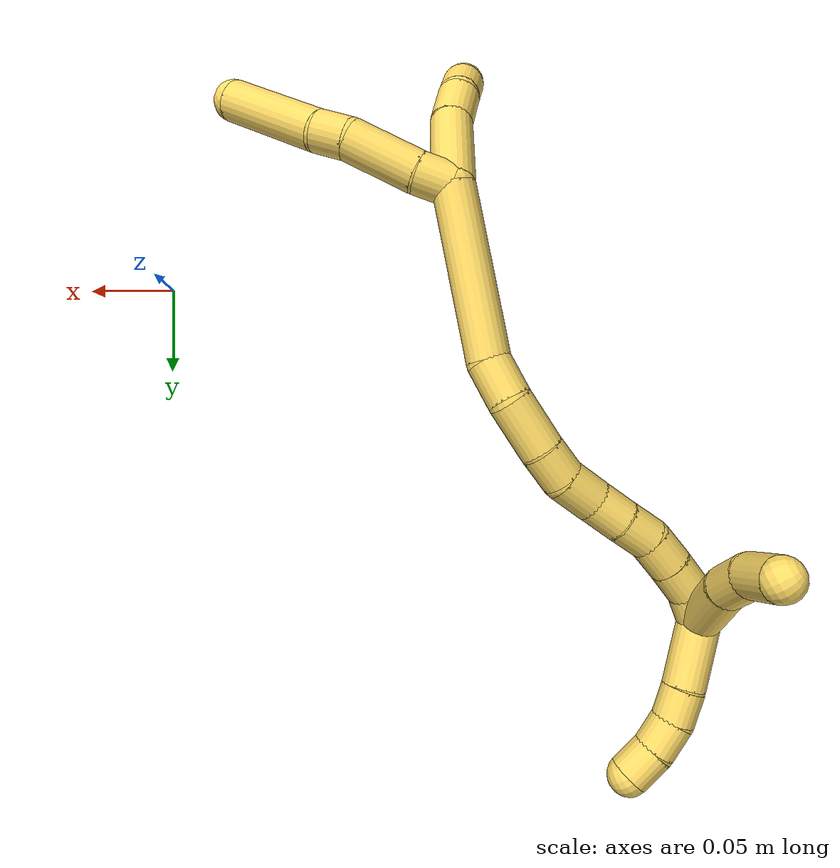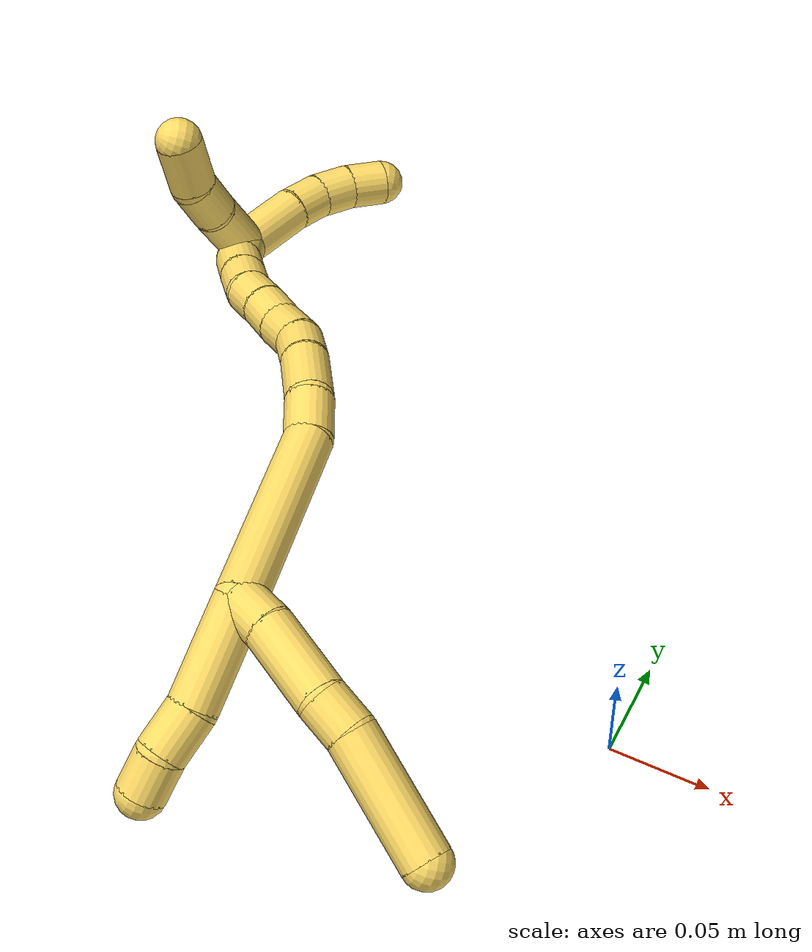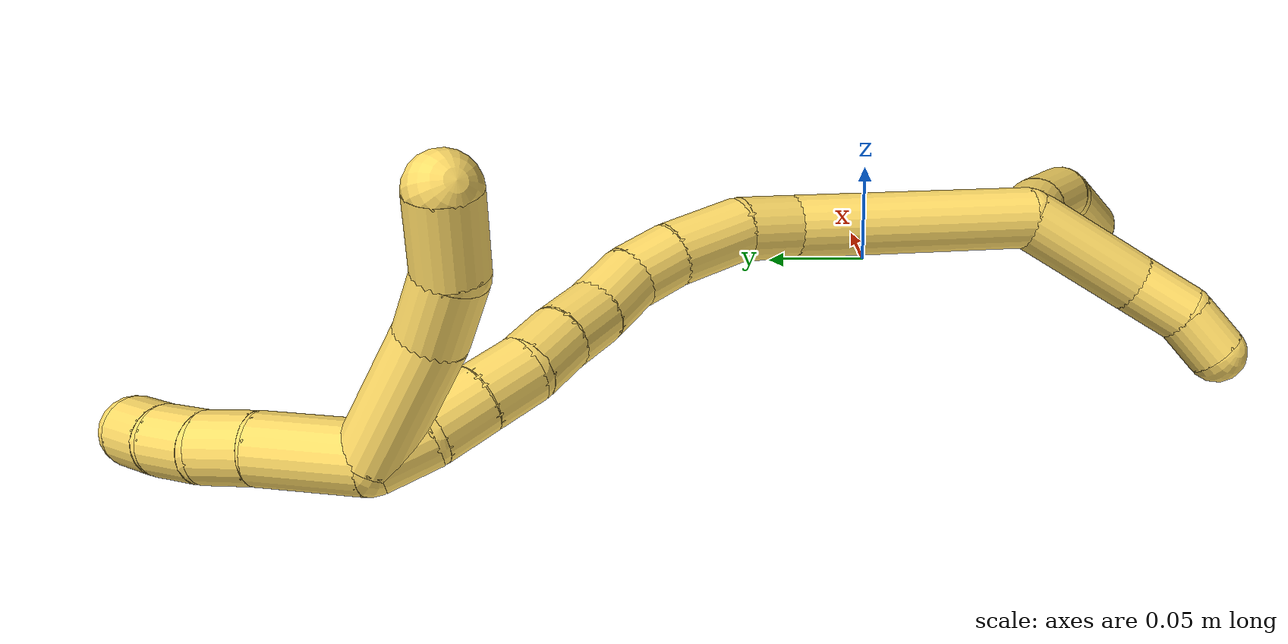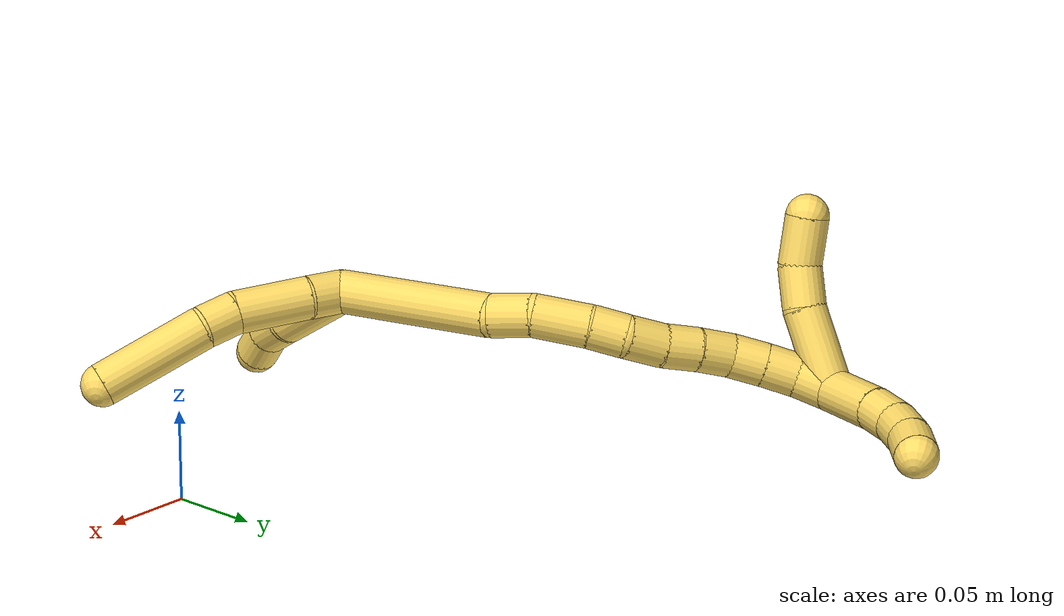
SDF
<sdf version="1.7">
 <world name="default">
  <model name="5">
   <static>0</static>
   <link name="5">
    <collision name="collision-cylinder-e_1_2_8">
     <pose>0.005857 -0.006306 -0.006116 2.34083 0.588038 1.242</pose>
     <geometry><cylinder><radius>0.0125</radius><length>0.021116</length></cylinder></geometry>
     <surface>
      <friction><ode><mu>1.16</mu><mu2>1.16</mu2><slip1>0</slip1><slip2>0</slip2></ode></friction>
      <contact><ode><kp>1e+06</kp><kd>1</kd><max_vel>0</max_vel><min_depth>0.001</min_depth></ode></contact>
     </surface>
    </collision>
    <visual name="visual-cylinder-e_1_2_8">
     <pose>0.005857 -0.006306 -0.006116 2.34083 0.588038 1.242</pose>
     <geometry><cylinder><radius>0.0125</radius><length>0.021116</length></cylinder></geometry>
     <material><ambient>1 0.858824 0.4 1</ambient></material>
    </visual>
    <collision name="collision-cylinder-e_2_8_9">
     <pose>0.022539 -0.027926 -0.023327 2.19784 0.519894 0.960871</pose>
     <geometry><cylinder><radius>0.0125</radius><length>0.04358</length></cylinder></geometry>
     <surface>
      <friction><ode><mu>1.16</mu><mu2>1.16</mu2><slip1>0</slip1><slip2>0</slip2></ode></friction>
      <contact><ode><kp>1e+06</kp><kd>1</kd><max_vel>0</max_vel><min_depth>0.001</min_depth></ode></contact>
     </surface>
    </collision>
    <visual name="visual-cylinder-e_2_8_9">
     <pose>0.022539 -0.027926 -0.023327 2.19784 0.519894 0.960871</pose>
     <geometry><cylinder><radius>0.0125</radius><length>0.04358</length></cylinder></geometry>
     <material><ambient>1 0.858824 0.4 1</ambient></material>
    </visual>
    <collision name="collision-cylinder-e_3_9_10">
     <pose>0.036707 -0.050067 -0.041215 2.3536 0.334195 0.770853</pose>
     <geometry><cylinder><radius>0.0125</radius><length>0.020389</length></cylinder></geometry>
     <surface>
      <friction><ode><mu>1.16</mu><mu2>1.16</mu2><slip1>0</slip1><slip2>0</slip2></ode></friction>
      <contact><ode><kp>1e+06</kp><kd>1</kd><max_vel>0</max_vel><min_depth>0.001</min_depth></ode></contact>
     </surface>
    </collision>
    <visual name="visual-cylinder-e_3_9_10">
     <pose>0.036707 -0.050067 -0.041215 2.3536 0.334195 0.770853</pose>
     <geometry><cylinder><radius>0.0125</radius><length>0.020389</length></cylinder></geometry>
     <material><ambient>1 0.858824 0.4 1</ambient></material>
    </visual>
    <collision name="collision-cylinder-e_4_10_6">
     <pose>0.045919 -0.082245 -0.067408 2.22403 0.181794 0.364968</pose>
     <geometry><cylinder><radius>0.0125</radius><length>0.064915</length></cylinder></geometry>
     <surface>
      <friction><ode><mu>1.16</mu><mu2>1.16</mu2><slip1>0</slip1><slip2>0</slip2></ode></friction>
      <contact><ode><kp>1e+06</kp><kd>1</kd><max_vel>0</max_vel><min_depth>0.001</min_depth></ode></contact>
     </surface>
    </collision>
    <visual name="visual-cylinder-e_4_10_6">
     <pose>0.045919 -0.082245 -0.067408 2.22403 0.181794 0.364968</pose>
     <geometry><cylinder><radius>0.0125</radius><length>0.064915</length></cylinder></geometry>
     <material><ambient>1 0.858824 0.4 1</ambient></material>
    </visual>
    <collision name="collision-cylinder-e_1_2_11">
     <pose>-0.006992 -0.02552 0.004819 1.38416 -0.262977 -0.218357</pose>
     <geometry><cylinder><radius>0.0125</radius><length>0.053791</length></cylinder></geometry>
     <surface>
      <friction><ode><mu>1.16</mu><mu2>1.16</mu2><slip1>0</slip1><slip2>0</slip2></ode></friction>
      <contact><ode><kp>1e+06</kp><kd>1</kd><max_vel>0</max_vel><min_depth>0.001</min_depth></ode></contact>
     </surface>
    </collision>
    <visual name="visual-cylinder-e_1_2_11">
     <pose>-0.006992 -0.02552 0.004819 1.38416 -0.262977 -0.218357</pose>
     <geometry><cylinder><radius>0.0125</radius><length>0.053791</length></cylinder></geometry>
     <material><ambient>1 0.858824 0.4 1</ambient></material>
    </visual>
    <collision name="collision-cylinder-e_2_11_12">
     <pose>-0.018257 -0.061856 0.013957 1.19091 -0.351695 -0.239602</pose>
     <geometry><cylinder><radius>0.0125</radius><length>0.024813</length></cylinder></geometry>
     <surface>
      <friction><ode><mu>1.16</mu><mu2>1.16</mu2><slip1>0</slip1><slip2>0</slip2></ode></friction>
      <contact><ode><kp>1e+06</kp><kd>1</kd><max_vel>0</max_vel><min_depth>0.001</min_depth></ode></contact>
     </surface>
    </collision>
    <visual name="visual-cylinder-e_2_11_12">
     <pose>-0.018257 -0.061856 0.013957 1.19091 -0.351695 -0.239602</pose>
     <geometry><cylinder><radius>0.0125</radius><length>0.024813</length></cylinder></geometry>
     <material><ambient>1 0.858824 0.4 1</ambient></material>
    </visual>
    <collision name="collision-cylinder-e_3_12_5">
     <pose>-0.028542 -0.081418 0.019631 1.41703 -0.596675 -0.515336</pose>
     <geometry><cylinder><radius>0.0125</radius><length>0.021397</length></cylinder></geometry>
     <surface>
      <friction><ode><mu>1.16</mu><mu2>1.16</mu2><slip1>0</slip1><slip2>0</slip2></ode></friction>
      <contact><ode><kp>1e+06</kp><kd>1</kd><max_vel>0</max_vel><min_depth>0.001</min_depth></ode></contact>
     </surface>
    </collision>
    <visual name="visual-cylinder-e_3_12_5">
     <pose>-0.028542 -0.081418 0.019631 1.41703 -0.596675 -0.515336</pose>
     <geometry><cylinder><radius>0.0125</radius><length>0.021397</length></cylinder></geometry>
     <material><ambient>1 0.858824 0.4 1</ambient></material>
    </visual>
    <collision name="collision-cylinder-e_1_2_13">
     <pose>-0.014158 0.045611 -0.014997 -1.88845 -0.28675 0.393704</pose>
     <geometry><cylinder><radius>0.0125</radius><length>0.100115</length></cylinder></geometry>
     <surface>
      <friction><ode><mu>1.16</mu><mu2>1.16</mu2><slip1>0</slip1><slip2>0</slip2></ode></friction>
      <contact><ode><kp>1e+06</kp><kd>1</kd><max_vel>0</max_vel><min_depth>0.001</min_depth></ode></contact>
     </surface>
    </collision>
    <visual name="visual-cylinder-e_1_2_13">
     <pose>-0.014158 0.045611 -0.014997 -1.88845 -0.28675 0.393704</pose>
     <geometry><cylinder><radius>0.0125</radius><length>0.100115</length></cylinder></geometry>
     <material><ambient>1 0.858824 0.4 1</ambient></material>
    </visual>
    <collision name="collision-cylinder-e_2_13_14">
     <pose>-0.032646 0.102587 -0.030181 -1.5873 -0.363986 0.369908</pose>
     <geometry><cylinder><radius>0.0125</radius><length>0.024325</length></cylinder></geometry>
     <surface>
      <friction><ode><mu>1.16</mu><mu2>1.16</mu2><slip1>0</slip1><slip2>0</slip2></ode></friction>
      <contact><ode><kp>1e+06</kp><kd>1</kd><max_vel>0</max_vel><min_depth>0.001</min_depth></ode></contact>
     </surface>
    </collision>
    <visual name="visual-cylinder-e_2_13_14">
     <pose>-0.032646 0.102587 -0.030181 -1.5873 -0.363986 0.369908</pose>
     <geometry><cylinder><radius>0.0125</radius><length>0.024325</length></cylinder></geometry>
     <material><ambient>1 0.858824 0.4 1</ambient></material>
    </visual>
    <collision name="collision-cylinder-e_3_14_15">
     <pose>-0.046539 0.126922 -0.030629 -1.59091 -0.635228 0.647258</pose>
     <geometry><cylinder><radius>0.0125</radius><length>0.032235</length></cylinder></geometry>
     <surface>
      <friction><ode><mu>1.16</mu><mu2>1.16</mu2><slip1>0</slip1><slip2>0</slip2></ode></friction>
      <contact><ode><kp>1e+06</kp><kd>1</kd><max_vel>0</max_vel><min_depth>0.001</min_depth></ode></contact>
     </surface>
    </collision>
    <visual name="visual-cylinder-e_3_14_15">
     <pose>-0.046539 0.126922 -0.030629 -1.59091 -0.635228 0.647258</pose>
     <geometry><cylinder><radius>0.0125</radius><length>0.032235</length></cylinder></geometry>
     <material><ambient>1 0.858824 0.4 1</ambient></material>
    </visual>
    <collision name="collision-cylinder-e_4_15_16">
     <pose>-0.063095 0.147244 -0.030825 -1.56193 -0.760346 0.754257</pose>
     <geometry><cylinder><radius>0.0125</radius><length>0.020292</length></cylinder></geometry>
     <surface>
      <friction><ode><mu>1.16</mu><mu2>1.16</mu2><slip1>0</slip1><slip2>0</slip2></ode></friction>
      <contact><ode><kp>1e+06</kp><kd>1</kd><max_vel>0</max_vel><min_depth>0.001</min_depth></ode></contact>
     </surface>
    </collision>
    <visual name="visual-cylinder-e_4_15_16">
     <pose>-0.063095 0.147244 -0.030825 -1.56193 -0.760346 0.754257</pose>
     <geometry><cylinder><radius>0.0125</radius><length>0.020292</length></cylinder></geometry>
     <material><ambient>1 0.858824 0.4 1</ambient></material>
    </visual>
    <collision name="collision-cylinder-e_5_16_17">
     <pose>-0.079018 0.160856 -0.028117 -1.17141 -0.92034 0.635325</pose>
     <geometry><cylinder><radius>0.0125</radius><length>0.022443</length></cylinder></geometry>
     <surface>
      <friction><ode><mu>1.16</mu><mu2>1.16</mu2><slip1>0</slip1><slip2>0</slip2></ode></friction>
      <contact><ode><kp>1e+06</kp><kd>1</kd><max_vel>0</max_vel><min_depth>0.001</min_depth></ode></contact>
     </surface>
    </collision>
    <visual name="visual-cylinder-e_5_16_17">
     <pose>-0.079018 0.160856 -0.028117 -1.17141 -0.92034 0.635325</pose>
     <geometry><cylinder><radius>0.0125</radius><length>0.022443</length></cylinder></geometry>
     <material><ambient>1 0.858824 0.4 1</ambient></material>
    </visual>
    <collision name="collision-cylinder-e_6_17_18">
     <pose>-0.095212 0.173663 -0.022385 -1.12979 -0.787094 0.514642</pose>
     <geometry><cylinder><radius>0.0125</radius><length>0.020511</length></cylinder></geometry>
     <surface>
      <friction><ode><mu>1.16</mu><mu2>1.16</mu2><slip1>0</slip1><slip2>0</slip2></ode></friction>
      <contact><ode><kp>1e+06</kp><kd>1</kd><max_vel>0</max_vel><min_depth>0.001</min_depth></ode></contact>
     </surface>
    </collision>
    <visual name="visual-cylinder-e_6_17_18">
     <pose>-0.095212 0.173663 -0.022385 -1.12979 -0.787094 0.514642</pose>
     <geometry><cylinder><radius>0.0125</radius><length>0.020511</length></cylinder></geometry>
     <material><ambient>1 0.858824 0.4 1</ambient></material>
    </visual>
    <collision name="collision-cylinder-e_7_18_19">
     <pose>-0.110089 0.186051 -0.01641 -1.11213 -0.863018 0.557425</pose>
     <geometry><cylinder><radius>0.0125</radius><length>0.020041</length></cylinder></geometry>
     <surface>
      <friction><ode><mu>1.16</mu><mu2>1.16</mu2><slip1>0</slip1><slip2>0</slip2></ode></friction>
      <contact><ode><kp>1e+06</kp><kd>1</kd><max_vel>0</max_vel><min_depth>0.001</min_depth></ode></contact>
     </surface>
    </collision>
    <visual name="visual-cylinder-e_7_18_19">
     <pose>-0.110089 0.186051 -0.01641 -1.11213 -0.863018 0.557425</pose>
     <geometry><cylinder><radius>0.0125</radius><length>0.020041</length></cylinder></geometry>
     <material><ambient>1 0.858824 0.4 1</ambient></material>
    </visual>
    <collision name="collision-cylinder-e_8_19_20">
     <pose>-0.124861 0.198869 -0.013074 -1.50612 -0.797228 0.75197</pose>
     <geometry><cylinder><radius>0.0125</radius><length>0.020011</length></cylinder></geometry>
     <surface>
      <friction><ode><mu>1.16</mu><mu2>1.16</mu2><slip1>0</slip1><slip2>0</slip2></ode></friction>
      <contact><ode><kp>1e+06</kp><kd>1</kd><max_vel>0</max_vel><min_depth>0.001</min_depth></ode></contact>
     </surface>
    </collision>
    <visual name="visual-cylinder-e_8_19_20">
     <pose>-0.124861 0.198869 -0.013074 -1.50612 -0.797228 0.75197</pose>
     <geometry><cylinder><radius>0.0125</radius><length>0.020011</length></cylinder></geometry>
     <material><ambient>1 0.858824 0.4 1</ambient></material>
    </visual>
    <collision name="collision-cylinder-e_9_20_21">
     <pose>-0.139253 0.212752 -0.012618 -1.57022 -0.808521 0.808106</pose>
     <geometry><cylinder><radius>0.0125</radius><length>0.020002</length></cylinder></geometry>
     <surface>
      <friction><ode><mu>1.16</mu><mu2>1.16</mu2><slip1>0</slip1><slip2>0</slip2></ode></friction>
      <contact><ode><kp>1e+06</kp><kd>1</kd><max_vel>0</max_vel><min_depth>0.001</min_depth></ode></contact>
     </surface>
    </collision>
    <visual name="visual-cylinder-e_9_20_21">
     <pose>-0.139253 0.212752 -0.012618 -1.57022 -0.808521 0.808106</pose>
     <geometry><cylinder><radius>0.0125</radius><length>0.020002</length></cylinder></geometry>
     <material><ambient>1 0.858824 0.4 1</ambient></material>
    </visual>
    <collision name="collision-cylinder-e_10_21_1">
     <pose>-0.152741 0.227112 -0.014975 -1.87751 -0.674661 0.893389</pose>
     <geometry><cylinder><radius>0.0125</radius><length>0.020025</length></cylinder></geometry>
     <surface>
      <friction><ode><mu>1.16</mu><mu2>1.16</mu2><slip1>0</slip1><slip2>0</slip2></ode></friction>
      <contact><ode><kp>1e+06</kp><kd>1</kd><max_vel>0</max_vel><min_depth>0.001</min_depth></ode></contact>
     </surface>
    </collision>
    <visual name="visual-cylinder-e_10_21_1">
     <pose>-0.152741 0.227112 -0.014975 -1.87751 -0.674661 0.893389</pose>
     <geometry><cylinder><radius>0.0125</radius><length>0.020025</length></cylinder></geometry>
     <material><ambient>1 0.858824 0.4 1</ambient></material>
    </visual>
    <collision name="collision-cylinder-e_1_1_22">
     <pose>-0.160335 0.249624 -0.030089 -2.27352 -0.06781 0.146092</pose>
     <geometry><cylinder><radius>0.0125</radius><length>0.039558</length></cylinder></geometry>
     <surface>
      <friction><ode><mu>1.16</mu><mu2>1.16</mu2><slip1>0</slip1><slip2>0</slip2></ode></friction>
      <contact><ode><kp>1e+06</kp><kd>1</kd><max_vel>0</max_vel><min_depth>0.001</min_depth></ode></contact>
     </surface>
    </collision>
    <visual name="visual-cylinder-e_1_1_22">
     <pose>-0.160335 0.249624 -0.030089 -2.27352 -0.06781 0.146092</pose>
     <geometry><cylinder><radius>0.0125</radius><length>0.039558</length></cylinder></geometry>
     <material><ambient>1 0.858824 0.4 1</ambient></material>
    </visual>
    <collision name="collision-cylinder-e_2_22_23">
     <pose>-0.162728 0.271536 -0.050067 -2.38252 -0.105329 0.262786</pose>
     <geometry><cylinder><radius>0.0125</radius><length>0.020027</length></cylinder></geometry>
     <surface>
      <friction><ode><mu>1.16</mu><mu2>1.16</mu2><slip1>0</slip1><slip2>0</slip2></ode></friction>
      <contact><ode><kp>1e+06</kp><kd>1</kd><max_vel>0</max_vel><min_depth>0.001</min_depth></ode></contact>
     </surface>
    </collision>
    <visual name="visual-cylinder-e_2_22_23">
     <pose>-0.162728 0.271536 -0.050067 -2.38252 -0.105329 0.262786</pose>
     <geometry><cylinder><radius>0.0125</radius><length>0.020027</length></cylinder></geometry>
     <material><ambient>1 0.858824 0.4 1</ambient></material>
    </visual>
    <collision name="collision-cylinder-e_3_23_24">
     <pose>-0.16331 0.283732 -0.065772 -2.57946 0.046879 -0.162049</pose>
     <geometry><cylinder><radius>0.0125</radius><length>0.020067</length></cylinder></geometry>
     <surface>
      <friction><ode><mu>1.16</mu><mu2>1.16</mu2><slip1>0</slip1><slip2>0</slip2></ode></friction>
      <contact><ode><kp>1e+06</kp><kd>1</kd><max_vel>0</max_vel><min_depth>0.001</min_depth></ode></contact>
     </surface>
    </collision>
    <visual name="visual-cylinder-e_3_23_24">
     <pose>-0.16331 0.283732 -0.065772 -2.57946 0.046879 -0.162049</pose>
     <geometry><cylinder><radius>0.0125</radius><length>0.020067</length></cylinder></geometry>
     <material><ambient>1 0.858824 0.4 1</ambient></material>
    </visual>
    <collision name="collision-cylinder-e_4_24_4">
     <pose>-0.161518 0.292843 -0.083609 -2.7586 0.130288 -0.649182</pose>
     <geometry><cylinder><radius>0.0125</radius><length>0.020348</length></cylinder></geometry>
     <surface>
      <friction><ode><mu>1.16</mu><mu2>1.16</mu2><slip1>0</slip1><slip2>0</slip2></ode></friction>
      <contact><ode><kp>1e+06</kp><kd>1</kd><max_vel>0</max_vel><min_depth>0.001</min_depth></ode></contact>
     </surface>
    </collision>
    <visual name="visual-cylinder-e_4_24_4">
     <pose>-0.161518 0.292843 -0.083609 -2.7586 0.130288 -0.649182</pose>
     <geometry><cylinder><radius>0.0125</radius><length>0.020348</length></cylinder></geometry>
     <material><ambient>1 0.858824 0.4 1</ambient></material>
    </visual>
    <collision name="collision-cylinder-e_1_1_25">
     <pose>-0.140695 0.234027 -0.002367 0.036031 0.884893 0.017072</pose>
     <geometry><cylinder><radius>0.0125</radius><length>0.047297</length></cylinder></geometry>
     <surface>
      <friction><ode><mu>1.16</mu><mu2>1.16</mu2><slip1>0</slip1><slip2>0</slip2></ode></friction>
      <contact><ode><kp>1e+06</kp><kd>1</kd><max_vel>0</max_vel><min_depth>0.001</min_depth></ode></contact>
     </surface>
    </collision>
    <visual name="visual-cylinder-e_1_1_25">
     <pose>-0.140695 0.234027 -0.002367 0.036031 0.884893 0.017072</pose>
     <geometry><cylinder><radius>0.0125</radius><length>0.047297</length></cylinder></geometry>
     <material><ambient>1 0.858824 0.4 1</ambient></material>
    </visual>
    <collision name="collision-cylinder-e_2_25_26">
     <pose>-0.113991 0.235282 0.021328 -0.202844 0.756165 -0.080801</pose>
     <geometry><cylinder><radius>0.0125</radius><length>0.024495</length></cylinder></geometry>
     <surface>
      <friction><ode><mu>1.16</mu><mu2>1.16</mu2><slip1>0</slip1><slip2>0</slip2></ode></friction>
      <contact><ode><kp>1e+06</kp><kd>1</kd><max_vel>0</max_vel><min_depth>0.001</min_depth></ode></contact>
     </surface>
    </collision>
    <visual name="visual-cylinder-e_2_25_26">
     <pose>-0.113991 0.235282 0.021328 -0.202844 0.756165 -0.080801</pose>
     <geometry><cylinder><radius>0.0125</radius><length>0.024495</length></cylinder></geometry>
     <material><ambient>1 0.858824 0.4 1</ambient></material>
    </visual>
    <collision name="collision-cylinder-e_3_26_3">
     <pose>-0.096017 0.243581 0.03812 -0.678719 0.74577 -0.274454</pose>
     <geometry><cylinder><radius>0.0125</radius><length>0.028208</length></cylinder></geometry>
     <surface>
      <friction><ode><mu>1.16</mu><mu2>1.16</mu2><slip1>0</slip1><slip2>0</slip2></ode></friction>
      <contact><ode><kp>1e+06</kp><kd>1</kd><max_vel>0</max_vel><min_depth>0.001</min_depth></ode></contact>
     </surface>
    </collision>
    <visual name="visual-cylinder-e_3_26_3">
     <pose>-0.096017 0.243581 0.03812 -0.678719 0.74577 -0.274454</pose>
     <geometry><cylinder><radius>0.0125</radius><length>0.028208</length></cylinder></geometry>
     <material><ambient>1 0.858824 0.4 1</ambient></material>
    </visual>
    <collision name="collision-sphere-3">
     <pose>-0.086447 0.250086 0.046184 0 -0 0</pose>
     <geometry><sphere><radius>0.0125</radius></sphere></geometry>
     <surface>
      <friction><ode><mu>1.16</mu><mu2>1.16</mu2><slip1>0</slip1><slip2>0</slip2></ode></friction>
      <contact><ode><kp>1e+06</kp><kd>1</kd><max_vel>0</max_vel><min_depth>0.001</min_depth></ode></contact>
     </surface>
    </collision>
    <visual name="visual-sphere-3">
     <pose>-0.086447 0.250086 0.046184 0 -0 0</pose>
     <geometry><sphere><radius>0.0125</radius></sphere></geometry>
     <material><ambient>1 0.858824 0.4 1</ambient></material>
    </visual>
    <collision name="collision-sphere-26">
     <pose>-0.105587 0.237077 0.030055 0 -0 0</pose>
     <geometry><sphere><radius>0.0125</radius></sphere></geometry>
     <surface>
      <friction><ode><mu>1.16</mu><mu2>1.16</mu2><slip1>0</slip1><slip2>0</slip2></ode></friction>
      <contact><ode><kp>1e+06</kp><kd>1</kd><max_vel>0</max_vel><min_depth>0.001</min_depth></ode></contact>
     </surface>
    </collision>
    <visual name="visual-sphere-26">
     <pose>-0.105587 0.237077 0.030055 0 -0 0</pose>
     <geometry><sphere><radius>0.0125</radius></sphere></geometry>
     <material><ambient>1 0.858824 0.4 1</ambient></material>
    </visual>
    <collision name="collision-sphere-25">
     <pose>-0.122394 0.233487 0.012601 0 -0 0</pose>
     <geometry><sphere><radius>0.0125</radius></sphere></geometry>
     <surface>
      <friction><ode><mu>1.16</mu><mu2>1.16</mu2><slip1>0</slip1><slip2>0</slip2></ode></friction>
      <contact><ode><kp>1e+06</kp><kd>1</kd><max_vel>0</max_vel><min_depth>0.001</min_depth></ode></contact>
     </surface>
    </collision>
    <visual name="visual-sphere-25">
     <pose>-0.122394 0.233487 0.012601 0 -0 0</pose>
     <geometry><sphere><radius>0.0125</radius></sphere></geometry>
     <material><ambient>1 0.858824 0.4 1</ambient></material>
    </visual>
    <collision name="collision-sphere-4">
     <pose>-0.160197 0.296613 -0.092966 0 -0 0</pose>
     <geometry><sphere><radius>0.0125</radius></sphere></geometry>
     <surface>
      <friction><ode><mu>1.16</mu><mu2>1.16</mu2><slip1>0</slip1><slip2>0</slip2></ode></friction>
      <contact><ode><kp>1e+06</kp><kd>1</kd><max_vel>0</max_vel><min_depth>0.001</min_depth></ode></contact>
     </surface>
    </collision>
    <visual name="visual-sphere-4">
     <pose>-0.160197 0.296613 -0.092966 0 -0 0</pose>
     <geometry><sphere><radius>0.0125</radius></sphere></geometry>
     <material><ambient>1 0.858824 0.4 1</ambient></material>
    </visual>
    <collision name="collision-sphere-24">
     <pose>-0.16284 0.289074 -0.074252 0 -0 0</pose>
     <geometry><sphere><radius>0.0125</radius></sphere></geometry>
     <surface>
      <friction><ode><mu>1.16</mu><mu2>1.16</mu2><slip1>0</slip1><slip2>0</slip2></ode></friction>
      <contact><ode><kp>1e+06</kp><kd>1</kd><max_vel>0</max_vel><min_depth>0.001</min_depth></ode></contact>
     </surface>
    </collision>
    <visual name="visual-sphere-24">
     <pose>-0.16284 0.289074 -0.074252 0 -0 0</pose>
     <geometry><sphere><radius>0.0125</radius></sphere></geometry>
     <material><ambient>1 0.858824 0.4 1</ambient></material>
    </visual>
    <collision name="collision-sphere-23">
     <pose>-0.163781 0.27839 -0.057292 0 -0 0</pose>
     <geometry><sphere><radius>0.0125</radius></sphere></geometry>
     <surface>
      <friction><ode><mu>1.16</mu><mu2>1.16</mu2><slip1>0</slip1><slip2>0</slip2></ode></friction>
      <contact><ode><kp>1e+06</kp><kd>1</kd><max_vel>0</max_vel><min_depth>0.001</min_depth></ode></contact>
     </surface>
    </collision>
    <visual name="visual-sphere-23">
     <pose>-0.163781 0.27839 -0.057292 0 -0 0</pose>
     <geometry><sphere><radius>0.0125</radius></sphere></geometry>
     <material><ambient>1 0.858824 0.4 1</ambient></material>
    </visual>
    <collision name="collision-sphere-22">
     <pose>-0.161675 0.264683 -0.042843 0 -0 0</pose>
     <geometry><sphere><radius>0.0125</radius></sphere></geometry>
     <surface>
      <friction><ode><mu>1.16</mu><mu2>1.16</mu2><slip1>0</slip1><slip2>0</slip2></ode></friction>
      <contact><ode><kp>1e+06</kp><kd>1</kd><max_vel>0</max_vel><min_depth>0.001</min_depth></ode></contact>
     </surface>
    </collision>
    <visual name="visual-sphere-22">
     <pose>-0.161675 0.264683 -0.042843 0 -0 0</pose>
     <geometry><sphere><radius>0.0125</radius></sphere></geometry>
     <material><ambient>1 0.858824 0.4 1</ambient></material>
    </visual>
    <collision name="collision-sphere-1">
     <pose>-0.158995 0.234566 -0.017336 0 -0 0</pose>
     <geometry><sphere><radius>0.0125</radius></sphere></geometry>
     <surface>
      <friction><ode><mu>1.16</mu><mu2>1.16</mu2><slip1>0</slip1><slip2>0</slip2></ode></friction>
      <contact><ode><kp>1e+06</kp><kd>1</kd><max_vel>0</max_vel><min_depth>0.001</min_depth></ode></contact>
     </surface>
    </collision>
    <visual name="visual-sphere-1">
     <pose>-0.158995 0.234566 -0.017336 0 -0 0</pose>
     <geometry><sphere><radius>0.0125</radius></sphere></geometry>
     <material><ambient>1 0.858824 0.4 1</ambient></material>
    </visual>
    <collision name="collision-sphere-21">
     <pose>-0.146487 0.219658 -0.012614 0 -0 0</pose>
     <geometry><sphere><radius>0.0125</radius></sphere></geometry>
     <surface>
      <friction><ode><mu>1.16</mu><mu2>1.16</mu2><slip1>0</slip1><slip2>0</slip2></ode></friction>
      <contact><ode><kp>1e+06</kp><kd>1</kd><max_vel>0</max_vel><min_depth>0.001</min_depth></ode></contact>
     </surface>
    </collision>
    <visual name="visual-sphere-21">
     <pose>-0.146487 0.219658 -0.012614 0 -0 0</pose>
     <geometry><sphere><radius>0.0125</radius></sphere></geometry>
     <material><ambient>1 0.858824 0.4 1</ambient></material>
    </visual>
    <collision name="collision-sphere-11">
     <pose>-0.013983 -0.051039 0.009638 0 -0 0</pose>
     <geometry><sphere><radius>0.0125</radius></sphere></geometry>
     <surface>
      <friction><ode><mu>1.16</mu><mu2>1.16</mu2><slip1>0</slip1><slip2>0</slip2></ode></friction>
      <contact><ode><kp>1e+06</kp><kd>1</kd><max_vel>0</max_vel><min_depth>0.001</min_depth></ode></contact>
     </surface>
    </collision>
    <visual name="visual-sphere-11">
     <pose>-0.013983 -0.051039 0.009638 0 -0 0</pose>
     <geometry><sphere><radius>0.0125</radius></sphere></geometry>
     <material><ambient>1 0.858824 0.4 1</ambient></material>
    </visual>
    <collision name="collision-sphere-6">
     <pose>0.051788 -0.107595 -0.08681 0 -0 0</pose>
     <geometry><sphere><radius>0.0125</radius></sphere></geometry>
     <surface>
      <friction><ode><mu>1.16</mu><mu2>1.16</mu2><slip1>0</slip1><slip2>0</slip2></ode></friction>
      <contact><ode><kp>1e+06</kp><kd>1</kd><max_vel>0</max_vel><min_depth>0.001</min_depth></ode></contact>
     </surface>
    </collision>
    <visual name="visual-sphere-6">
     <pose>0.051788 -0.107595 -0.08681 0 -0 0</pose>
     <geometry><sphere><radius>0.0125</radius></sphere></geometry>
     <material><ambient>1 0.858824 0.4 1</ambient></material>
    </visual>
    <collision name="collision-sphere-10">
     <pose>0.040051 -0.056894 -0.048007 0 -0 0</pose>
     <geometry><sphere><radius>0.0125</radius></sphere></geometry>
     <surface>
      <friction><ode><mu>1.16</mu><mu2>1.16</mu2><slip1>0</slip1><slip2>0</slip2></ode></friction>
      <contact><ode><kp>1e+06</kp><kd>1</kd><max_vel>0</max_vel><min_depth>0.001</min_depth></ode></contact>
     </surface>
    </collision>
    <visual name="visual-sphere-10">
     <pose>0.040051 -0.056894 -0.048007 0 -0 0</pose>
     <geometry><sphere><radius>0.0125</radius></sphere></geometry>
     <material><ambient>1 0.858824 0.4 1</ambient></material>
    </visual>
    <collision name="collision-sphere-9">
     <pose>0.033364 -0.043239 -0.034423 0 -0 0</pose>
     <geometry><sphere><radius>0.0125</radius></sphere></geometry>
     <surface>
      <friction><ode><mu>1.16</mu><mu2>1.16</mu2><slip1>0</slip1><slip2>0</slip2></ode></friction>
      <contact><ode><kp>1e+06</kp><kd>1</kd><max_vel>0</max_vel><min_depth>0.001</min_depth></ode></contact>
     </surface>
    </collision>
    <visual name="visual-sphere-9">
     <pose>0.033364 -0.043239 -0.034423 0 -0 0</pose>
     <geometry><sphere><radius>0.0125</radius></sphere></geometry>
     <material><ambient>1 0.858824 0.4 1</ambient></material>
    </visual>
    <collision name="collision-sphere-2">
     <geometry><sphere><radius>0.0125</radius></sphere></geometry>
     <surface>
      <friction><ode><mu>1.16</mu><mu2>1.16</mu2><slip1>0</slip1><slip2>0</slip2></ode></friction>
      <contact><ode><kp>1e+06</kp><kd>1</kd><max_vel>0</max_vel><min_depth>0.001</min_depth></ode></contact>
     </surface>
    </collision>
    <visual name="visual-sphere-2">
     <geometry><sphere><radius>0.0125</radius></sphere></geometry>
     <material><ambient>1 0.858824 0.4 1</ambient></material>
    </visual>
    <collision name="collision-sphere-19">
     <pose>-0.117703 0.191893 -0.013526 0 -0 0</pose>
     <geometry><sphere><radius>0.0125</radius></sphere></geometry>
     <surface>
      <friction><ode><mu>1.16</mu><mu2>1.16</mu2><slip1>0</slip1><slip2>0</slip2></ode></friction>
      <contact><ode><kp>1e+06</kp><kd>1</kd><max_vel>0</max_vel><min_depth>0.001</min_depth></ode></contact>
     </surface>
    </collision>
    <visual name="visual-sphere-19">
     <pose>-0.117703 0.191893 -0.013526 0 -0 0</pose>
     <geometry><sphere><radius>0.0125</radius></sphere></geometry>
     <material><ambient>1 0.858824 0.4 1</ambient></material>
    </visual>
    <collision name="collision-sphere-8">
     <pose>0.011714 -0.012613 -0.012231 0 -0 0</pose>
     <geometry><sphere><radius>0.0125</radius></sphere></geometry>
     <surface>
      <friction><ode><mu>1.16</mu><mu2>1.16</mu2><slip1>0</slip1><slip2>0</slip2></ode></friction>
      <contact><ode><kp>1e+06</kp><kd>1</kd><max_vel>0</max_vel><min_depth>0.001</min_depth></ode></contact>
     </surface>
    </collision>
    <visual name="visual-sphere-8">
     <pose>0.011714 -0.012613 -0.012231 0 -0 0</pose>
     <geometry><sphere><radius>0.0125</radius></sphere></geometry>
     <material><ambient>1 0.858824 0.4 1</ambient></material>
    </visual>
    <collision name="collision-sphere-12">
     <pose>-0.022531 -0.072672 0.018276 0 -0 0</pose>
     <geometry><sphere><radius>0.0125</radius></sphere></geometry>
     <surface>
      <friction><ode><mu>1.16</mu><mu2>1.16</mu2><slip1>0</slip1><slip2>0</slip2></ode></friction>
      <contact><ode><kp>1e+06</kp><kd>1</kd><max_vel>0</max_vel><min_depth>0.001</min_depth></ode></contact>
     </surface>
    </collision>
    <visual name="visual-sphere-12">
     <pose>-0.022531 -0.072672 0.018276 0 -0 0</pose>
     <geometry><sphere><radius>0.0125</radius></sphere></geometry>
     <material><ambient>1 0.858824 0.4 1</ambient></material>
    </visual>
    <collision name="collision-sphere-5">
     <pose>-0.034554 -0.090163 0.020987 0 -0 0</pose>
     <geometry><sphere><radius>0.0125</radius></sphere></geometry>
     <surface>
      <friction><ode><mu>1.16</mu><mu2>1.16</mu2><slip1>0</slip1><slip2>0</slip2></ode></friction>
      <contact><ode><kp>1e+06</kp><kd>1</kd><max_vel>0</max_vel><min_depth>0.001</min_depth></ode></contact>
     </surface>
    </collision>
    <visual name="visual-sphere-5">
     <pose>-0.034554 -0.090163 0.020987 0 -0 0</pose>
     <geometry><sphere><radius>0.0125</radius></sphere></geometry>
     <material><ambient>1 0.858824 0.4 1</ambient></material>
    </visual>
    <collision name="collision-sphere-13">
     <pose>-0.028316 0.091223 -0.029993 0 -0 0</pose>
     <geometry><sphere><radius>0.0125</radius></sphere></geometry>
     <surface>
      <friction><ode><mu>1.16</mu><mu2>1.16</mu2><slip1>0</slip1><slip2>0</slip2></ode></friction>
      <contact><ode><kp>1e+06</kp><kd>1</kd><max_vel>0</max_vel><min_depth>0.001</min_depth></ode></contact>
     </surface>
    </collision>
    <visual name="visual-sphere-13">
     <pose>-0.028316 0.091223 -0.029993 0 -0 0</pose>
     <geometry><sphere><radius>0.0125</radius></sphere></geometry>
     <material><ambient>1 0.858824 0.4 1</ambient></material>
    </visual>
    <collision name="collision-sphere-14">
     <pose>-0.036976 0.113951 -0.030368 0 -0 0</pose>
     <geometry><sphere><radius>0.0125</radius></sphere></geometry>
     <surface>
      <friction><ode><mu>1.16</mu><mu2>1.16</mu2><slip1>0</slip1><slip2>0</slip2></ode></friction>
      <contact><ode><kp>1e+06</kp><kd>1</kd><max_vel>0</max_vel><min_depth>0.001</min_depth></ode></contact>
     </surface>
    </collision>
    <visual name="visual-sphere-14">
     <pose>-0.036976 0.113951 -0.030368 0 -0 0</pose>
     <geometry><sphere><radius>0.0125</radius></sphere></geometry>
     <material><ambient>1 0.858824 0.4 1</ambient></material>
    </visual>
    <collision name="collision-sphere-15">
     <pose>-0.056103 0.139893 -0.03089 0 -0 0</pose>
     <geometry><sphere><radius>0.0125</radius></sphere></geometry>
     <surface>
      <friction><ode><mu>1.16</mu><mu2>1.16</mu2><slip1>0</slip1><slip2>0</slip2></ode></friction>
      <contact><ode><kp>1e+06</kp><kd>1</kd><max_vel>0</max_vel><min_depth>0.001</min_depth></ode></contact>
     </surface>
    </collision>
    <visual name="visual-sphere-15">
     <pose>-0.056103 0.139893 -0.03089 0 -0 0</pose>
     <geometry><sphere><radius>0.0125</radius></sphere></geometry>
     <material><ambient>1 0.858824 0.4 1</ambient></material>
    </visual>
    <collision name="collision-sphere-16">
     <pose>-0.070087 0.154596 -0.03076 0 -0 0</pose>
     <geometry><sphere><radius>0.0125</radius></sphere></geometry>
     <surface>
      <friction><ode><mu>1.16</mu><mu2>1.16</mu2><slip1>0</slip1><slip2>0</slip2></ode></friction>
      <contact><ode><kp>1e+06</kp><kd>1</kd><max_vel>0</max_vel><min_depth>0.001</min_depth></ode></contact>
     </surface>
    </collision>
    <visual name="visual-sphere-16">
     <pose>-0.070087 0.154596 -0.03076 0 -0 0</pose>
     <geometry><sphere><radius>0.0125</radius></sphere></geometry>
     <material><ambient>1 0.858824 0.4 1</ambient></material>
    </visual>
    <collision name="collision-sphere-17">
     <pose>-0.087948 0.167117 -0.025475 0 -0 0</pose>
     <geometry><sphere><radius>0.0125</radius></sphere></geometry>
     <surface>
      <friction><ode><mu>1.16</mu><mu2>1.16</mu2><slip1>0</slip1><slip2>0</slip2></ode></friction>
      <contact><ode><kp>1e+06</kp><kd>1</kd><max_vel>0</max_vel><min_depth>0.001</min_depth></ode></contact>
     </surface>
    </collision>
    <visual name="visual-sphere-17">
     <pose>-0.087948 0.167117 -0.025475 0 -0 0</pose>
     <geometry><sphere><radius>0.0125</radius></sphere></geometry>
     <material><ambient>1 0.858824 0.4 1</ambient></material>
    </visual>
    <collision name="collision-sphere-18">
     <pose>-0.102476 0.18021 -0.019295 0 -0 0</pose>
     <geometry><sphere><radius>0.0125</radius></sphere></geometry>
     <surface>
      <friction><ode><mu>1.16</mu><mu2>1.16</mu2><slip1>0</slip1><slip2>0</slip2></ode></friction>
      <contact><ode><kp>1e+06</kp><kd>1</kd><max_vel>0</max_vel><min_depth>0.001</min_depth></ode></contact>
     </surface>
    </collision>
    <visual name="visual-sphere-18">
     <pose>-0.102476 0.18021 -0.019295 0 -0 0</pose>
     <geometry><sphere><radius>0.0125</radius></sphere></geometry>
     <material><ambient>1 0.858824 0.4 1</ambient></material>
    </visual>
    <collision name="collision-sphere-20">
     <pose>-0.132019 0.205845 -0.012622 0 -0 0</pose>
     <geometry><sphere><radius>0.0125</radius></sphere></geometry>
     <surface>
      <friction><ode><mu>1.16</mu><mu2>1.16</mu2><slip1>0</slip1><slip2>0</slip2></ode></friction>
      <contact><ode><kp>1e+06</kp><kd>1</kd><max_vel>0</max_vel><min_depth>0.001</min_depth></ode></contact>
     </surface>
    </collision>
    <visual name="visual-sphere-20">
     <pose>-0.132019 0.205845 -0.012622 0 -0 0</pose>
     <geometry><sphere><radius>0.0125</radius></sphere></geometry>
     <material><ambient>1 0.858824 0.4 1</ambient></material>
    </visual>
    <inertial>
     <pose>-0.058923 0.101511 -0.020195 0 -0 0</pose>
     <mass>0.75</mass>
     <inertia>
      <ixx>0.000202</ixx>
      <ixy>0</ixy>
      <ixz>0</ixz>
      <iyy>5.2e-05</iyy>
      <iyz>0</iyz>
      <izz>-4.3e-05</izz>
     </inertia>
    </inertial>
   </link>
   <pose>-0.169498 -0.044102 0.067955 0.780957 -0.944255 -0.359249</pose>
  </model>
 </world>
</sdf>
